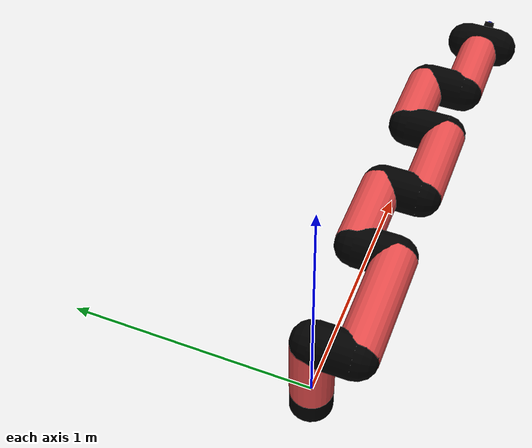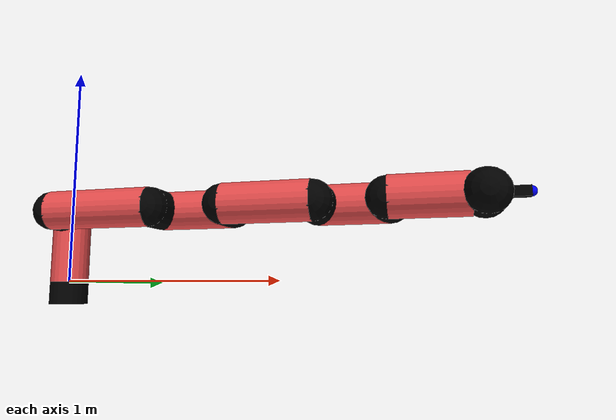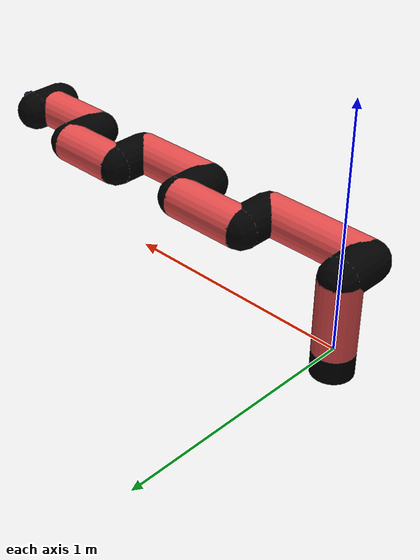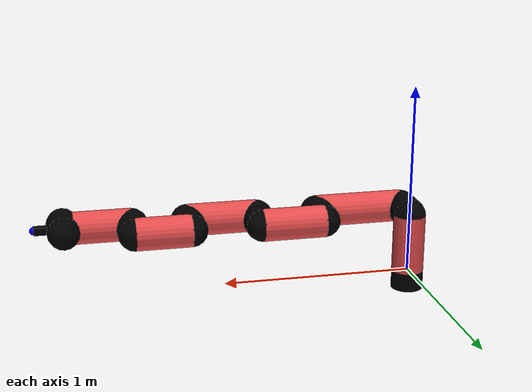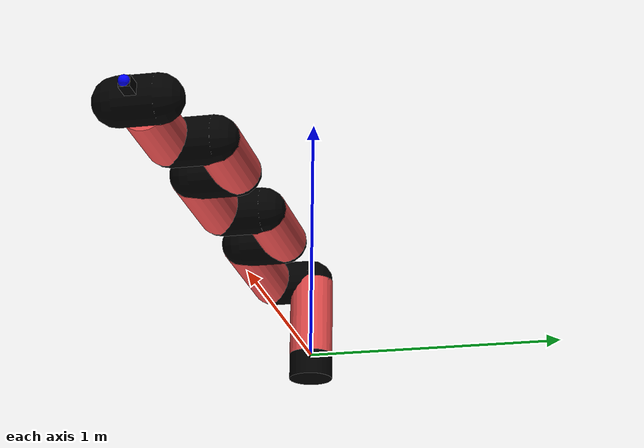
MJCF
<mujoco model="manipulator">
		<compiler angle="degree" coordinate="local" inertiafromgeom="auto" meshdir="meshes/"/>
		<option gravity="0 0 0" integrator="RK4" iterations="30" timestep="0.01"/>

		<default>
		<joint armature="1" limited="true" stiffness="10" damping="15" frictionloss="5.0"/>
		<geom conaffinity="1" condim="3" contype="1" friction=".5 .1 .1" margin="0.002"/>
		<motor ctrllimited="true"/>
		<position ctrllimited="true"/>
		</default>

		<asset>
		<texture builtin="gradient" height="100" rgb1="1.0 1.0 1.0" rgb2="1.0 1.0 1.0" type="skybox" width="100"/>
		<texture builtin="flat" height="32" name="arm_tex" rgb1="0.9 0.3 0.3" type="2d" width="32"/>
		<texture builtin="flat" height="32" name="gripper_tex" rgb1="0.0 0.0 0.0" type="cube" width="32"/>

		<material name="arm_mat" shininess="0.1" specular="0.1" texture="arm_tex"/>
		<material name="gripper_mat" shininess="1" specular="1" texture="gripper_tex"/>
		</asset>

		<worldbody>
		<light cutoff="45" diffuse=".8 .8 .8" dir="0 0.16 -1" directional="false" name="light" pos="0 -2.0 8.0" specular="0.3 0.3 0.3"/>

		<body name="base_link" pos="0 0 -0.1">
		<geom fromto="0 0 0 0 0 0.1" material="arm_mat" name="base_link" rgba="0.0 0.0 0.0 1" size="0.085" type="cylinder"/>
		</body>

		<body name="l1" pos="0 0 0">
<geom fromto="0 0 0 0 0 0.31" material="arm_mat" name="l1" rgba="0.9 0.3 0.3 1" size="0.085" type="cylinder"/>
<geom fromto="0 0 0.31 0 -0.16 0.31" material="arm_mat" name="l1_ex" rgba="0.0 0.0 0.0 1" size="0.085" type="capsule"/>
<joint axis="0 0 1" name="j1" pos="0 0 0" range="-90 90" damping="24.26" frictionloss="11.92"/>

<body name="l2" pos="0 -0.16 0.31">
<geom fromto="0 0 0 0.47 0 0" material="arm_mat" name="l2" rgba="0.9 0.3 0.3 1" size="0.085" type="cylinder"/>
<geom fromto="0.47 0 0 0.47 0.16 0" material="arm_mat" name="l2_ex" rgba="0.0 0.0 0.0 1" size="0.085" type="capsule"/>
<joint axis="0.0 1.0 0.0" name="j2" pos="0 0 0" range="-90 60" damping="29.16" frictionloss="10.31"/>

<body name="l3" pos="0.47 0.16 0">
<geom fromto="0 0 0 0.33 0 0" material="arm_mat" name="l3" rgba="0.9 0.3 0.3 1" size="0.085" type="cylinder"/>
<geom fromto="0.33 0 0 0.33 -0.16 0" material="arm_mat" name="l3_ex" rgba="0.0 0.0 0.0 1" size="0.085" type="capsule"/>
<joint axis="0.0 1.0 0.0" name="j3" pos="0 0 0" range="-30 60" damping="37.47" frictionloss="7.76"/>

<body name="l4" pos="0.33 -0.16 0">
<geom fromto="0 0 0 0.37 0 0" material="arm_mat" name="l4" rgba="0.9 0.3 0.3 1" size="0.085" type="cylinder"/>
<geom fromto="0.37 0 0 0.37 0.16 0" material="arm_mat" name="l4_ex" rgba="0.0 0.0 0.0 1" size="0.085" type="capsule"/>
<joint axis="0.0 1.0 0.0" name="j4" pos="0 0 0" range="-30 60" damping="35.44" frictionloss="9.82"/>

<body name="l5" pos="0.37 0.16 0">
<geom fromto="0 0 0 0.29 0 0" material="arm_mat" name="l5" rgba="0.9 0.3 0.3 1" size="0.085" type="cylinder"/>
<geom fromto="0.29 0 0 0.29 -0.16 0" material="arm_mat" name="l5_ex" rgba="0.0 0.0 0.0 1" size="0.085" type="capsule"/>
<joint axis="0.0 1.0 0.0" name="j5" pos="0 0 0" range="-30 60" damping="28.1" frictionloss="8.28"/>

<body name="l6" pos="0.29 -0.16 0">
<geom fromto="0 0 0 0.3 0 0" material="arm_mat" name="l6" rgba="0.9 0.3 0.3 1" size="0.085" type="cylinder"/>
<joint axis="0.0 1.0 0.0" name="j6" pos="0 0 0" range="-30 60" damping="26.73" frictionloss="8.54"/>

<body name="gripper" pos="0.3 0 0">
<geom fromto="0.05 -0.07 0 0.05 0.07 0" material="gripper_mat" name="gripper" rgba="0.0 0.0 0.0 1" size="0.085" type="capsule"/><joint axis="1 0 0" name="j7" pos="0 0 0" range="-90 90" damping="15" frictionloss="5.0"/><body name="finger" pos="0.1 0 0">
<geom fromto="0 0.0 0 0.1 0.0 0" material="gripper_mat" name="finger" rgba="0.0 0.0 0.0 1" size="0.020 0.06 0.06" type="box"/>
</body>
<site name="current" pos="0.2 0. 0.0" rgba="0. 0. 1.0 1" size="0.02" type="sphere"/>
</body>
</body>
</body>
</body>
</body>
</body>
</body>
</worldbody>
<actuator>
<motor ctrllimited="true" ctrlrange="-1.0 1.0" joint="j1" gear="89.66"/>
<motor ctrllimited="true" ctrlrange="-1.0 1.0" joint="j2" gear="75.67"/>
<motor ctrllimited="true" ctrlrange="-1.0 1.0" joint="j3" gear="96.7"/>
<motor ctrllimited="true" ctrlrange="-1.0 1.0" joint="j4" gear="86.53"/>
<motor ctrllimited="true" ctrlrange="-1.0 1.0" joint="j5" gear="68.04"/>
<motor ctrllimited="true" ctrlrange="-1.0 1.0" joint="j6" gear="84.36"/>
<motor ctrllimited="true" ctrlrange="-1.0 1.0" joint="j7" gear="80"/>
</actuator>
</mujoco>
